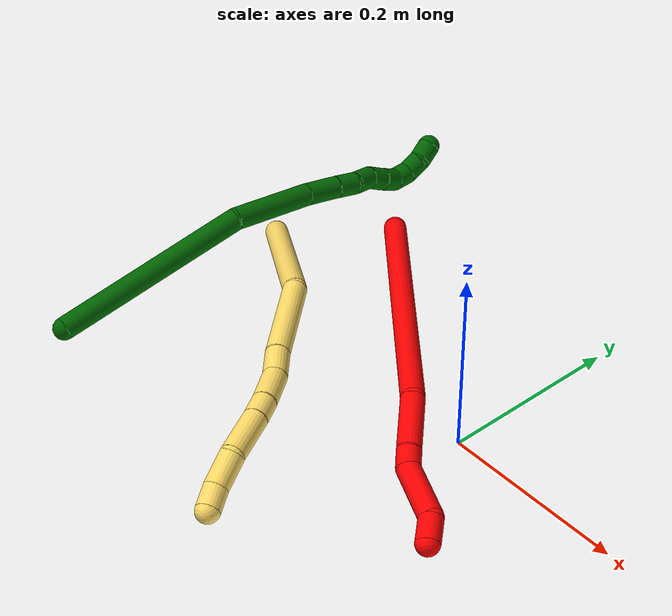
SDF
<sdf version="1.7">
 <world name="default">
  <model name="2">
   <static>0</static>
   <link name="2">
    <collision name="collision-cylinder-e_1_1_4">
     <pose>0.081137 -0.069996 -0.12552 2.6329 0.51395 1.58154</pose>
     <geometry><cylinder><radius>0.0125</radius><length>0.330078</length></cylinder></geometry>
     <surface>
      <friction><ode><mu>1.16</mu><mu2>1.16</mu2><slip1>0</slip1><slip2>0</slip2></ode></friction>
      <contact><ode><kp>1e+06</kp><kd>1</kd><max_vel>0</max_vel><min_depth>0.001</min_depth></ode></contact>
     </surface>
    </collision>
    <visual name="visual-cylinder-e_1_1_4">
     <pose>0.081137 -0.069996 -0.12552 2.6329 0.51395 1.58154</pose>
     <geometry><cylinder><radius>0.0125</radius><length>0.330078</length></cylinder></geometry>
     <material><ambient>1 0 0 1</ambient></material>
    </visual>
    <collision name="collision-cylinder-e_2_4_5">
     <pose>0.166741 -0.150161 -0.278185 2.78316 0.152918 0.800146</pose>
     <geometry><cylinder><radius>0.0125</radius><length>0.058659</length></cylinder></geometry>
     <surface>
      <friction><ode><mu>1.16</mu><mu2>1.16</mu2><slip1>0</slip1><slip2>0</slip2></ode></friction>
      <contact><ode><kp>1e+06</kp><kd>1</kd><max_vel>0</max_vel><min_depth>0.001</min_depth></ode></contact>
     </surface>
    </collision>
    <visual name="visual-cylinder-e_2_4_5">
     <pose>0.166741 -0.150161 -0.278185 2.78316 0.152918 0.800146</pose>
     <geometry><cylinder><radius>0.0125</radius><length>0.058659</length></cylinder></geometry>
     <material><ambient>1 0 0 1</ambient></material>
    </visual>
    <collision name="collision-cylinder-e_3_5_6">
     <pose>0.171756 -0.162935 -0.315049 2.87965 0.054406 0.407399</pose>
     <geometry><cylinder><radius>0.0125</radius><length>0.020155</length></cylinder></geometry>
     <surface>
      <friction><ode><mu>1.16</mu><mu2>1.16</mu2><slip1>0</slip1><slip2>0</slip2></ode></friction>
      <contact><ode><kp>1e+06</kp><kd>1</kd><max_vel>0</max_vel><min_depth>0.001</min_depth></ode></contact>
     </surface>
    </collision>
    <visual name="visual-cylinder-e_3_5_6">
     <pose>0.171756 -0.162935 -0.315049 2.87965 0.054406 0.407399</pose>
     <geometry><cylinder><radius>0.0125</radius><length>0.020155</length></cylinder></geometry>
     <material><ambient>1 0 0 1</ambient></material>
    </visual>
    <collision name="collision-cylinder-e_4_6_7">
     <pose>0.188183 -0.16862 -0.352307 3.03024 0.520354 2.72884</pose>
     <geometry><cylinder><radius>0.0125</radius><length>0.063874</length></cylinder></geometry>
     <surface>
      <friction><ode><mu>1.16</mu><mu2>1.16</mu2><slip1>0</slip1><slip2>0</slip2></ode></friction>
      <contact><ode><kp>1e+06</kp><kd>1</kd><max_vel>0</max_vel><min_depth>0.001</min_depth></ode></contact>
     </surface>
    </collision>
    <visual name="visual-cylinder-e_4_6_7">
     <pose>0.188183 -0.16862 -0.352307 3.03024 0.520354 2.72884</pose>
     <geometry><cylinder><radius>0.0125</radius><length>0.063874</length></cylinder></geometry>
     <material><ambient>1 0 0 1</ambient></material>
    </visual>
    <collision name="collision-cylinder-e_5_7_2">
     <pose>0.205117 -0.176683 -0.392474 2.76574 0.077582 0.402636</pose>
     <geometry><cylinder><radius>0.0125</radius><length>0.027235</length></cylinder></geometry>
     <surface>
      <friction><ode><mu>1.16</mu><mu2>1.16</mu2><slip1>0</slip1><slip2>0</slip2></ode></friction>
      <contact><ode><kp>1e+06</kp><kd>1</kd><max_vel>0</max_vel><min_depth>0.001</min_depth></ode></contact>
     </surface>
    </collision>
    <visual name="visual-cylinder-e_5_7_2">
     <pose>0.205117 -0.176683 -0.392474 2.76574 0.077582 0.402636</pose>
     <geometry><cylinder><radius>0.0125</radius><length>0.027235</length></cylinder></geometry>
     <material><ambient>1 0 0 1</ambient></material>
    </visual>
    <collision name="collision-sphere-2">
     <pose>0.206172 -0.181666 -0.405102 0 -0 0</pose>
     <geometry><sphere><radius>0.0125</radius></sphere></geometry>
     <surface>
      <friction><ode><mu>1.16</mu><mu2>1.16</mu2><slip1>0</slip1><slip2>0</slip2></ode></friction>
      <contact><ode><kp>1e+06</kp><kd>1</kd><max_vel>0</max_vel><min_depth>0.001</min_depth></ode></contact>
     </surface>
    </collision>
    <visual name="visual-sphere-2">
     <pose>0.206172 -0.181666 -0.405102 0 -0 0</pose>
     <geometry><sphere><radius>0.0125</radius></sphere></geometry>
     <material><ambient>1 0 0 1</ambient></material>
    </visual>
    <collision name="collision-sphere-7">
     <pose>0.204062 -0.171699 -0.379845 0 -0 0</pose>
     <geometry><sphere><radius>0.0125</radius></sphere></geometry>
     <surface>
      <friction><ode><mu>1.16</mu><mu2>1.16</mu2><slip1>0</slip1><slip2>0</slip2></ode></friction>
      <contact><ode><kp>1e+06</kp><kd>1</kd><max_vel>0</max_vel><min_depth>0.001</min_depth></ode></contact>
     </surface>
    </collision>
    <visual name="visual-sphere-7">
     <pose>0.204062 -0.171699 -0.379845 0 -0 0</pose>
     <geometry><sphere><radius>0.0125</radius></sphere></geometry>
     <material><ambient>1 0 0 1</ambient></material>
    </visual>
    <collision name="collision-sphere-6">
     <pose>0.172304 -0.165541 -0.324769 0 -0 0</pose>
     <geometry><sphere><radius>0.0125</radius></sphere></geometry>
     <surface>
      <friction><ode><mu>1.16</mu><mu2>1.16</mu2><slip1>0</slip1><slip2>0</slip2></ode></friction>
      <contact><ode><kp>1e+06</kp><kd>1</kd><max_vel>0</max_vel><min_depth>0.001</min_depth></ode></contact>
     </surface>
    </collision>
    <visual name="visual-sphere-6">
     <pose>0.172304 -0.165541 -0.324769 0 -0 0</pose>
     <geometry><sphere><radius>0.0125</radius></sphere></geometry>
     <material><ambient>1 0 0 1</ambient></material>
    </visual>
    <collision name="collision-sphere-5">
     <pose>0.171208 -0.160329 -0.30533 0 -0 0</pose>
     <geometry><sphere><radius>0.0125</radius></sphere></geometry>
     <surface>
      <friction><ode><mu>1.16</mu><mu2>1.16</mu2><slip1>0</slip1><slip2>0</slip2></ode></friction>
      <contact><ode><kp>1e+06</kp><kd>1</kd><max_vel>0</max_vel><min_depth>0.001</min_depth></ode></contact>
     </surface>
    </collision>
    <visual name="visual-sphere-5">
     <pose>0.171208 -0.160329 -0.30533 0 -0 0</pose>
     <geometry><sphere><radius>0.0125</radius></sphere></geometry>
     <material><ambient>1 0 0 1</ambient></material>
    </visual>
    <collision name="collision-sphere-1">
     <geometry><sphere><radius>0.0125</radius></sphere></geometry>
     <surface>
      <friction><ode><mu>1.16</mu><mu2>1.16</mu2><slip1>0</slip1><slip2>0</slip2></ode></friction>
      <contact><ode><kp>1e+06</kp><kd>1</kd><max_vel>0</max_vel><min_depth>0.001</min_depth></ode></contact>
     </surface>
    </collision>
    <visual name="visual-sphere-1">
     <geometry><sphere><radius>0.0125</radius></sphere></geometry>
     <material><ambient>1 0 0 1</ambient></material>
    </visual>
    <collision name="collision-sphere-4">
     <pose>0.162273 -0.139992 -0.25104 0 -0 0</pose>
     <geometry><sphere><radius>0.0125</radius></sphere></geometry>
     <surface>
      <friction><ode><mu>1.16</mu><mu2>1.16</mu2><slip1>0</slip1><slip2>0</slip2></ode></friction>
      <contact><ode><kp>1e+06</kp><kd>1</kd><max_vel>0</max_vel><min_depth>0.001</min_depth></ode></contact>
     </surface>
    </collision>
    <visual name="visual-sphere-4">
     <pose>0.162273 -0.139992 -0.25104 0 -0 0</pose>
     <geometry><sphere><radius>0.0125</radius></sphere></geometry>
     <material><ambient>1 0 0 1</ambient></material>
    </visual>
    <inertial>
     <pose>0.11526 -0.101557 -0.194582 0 -0 0</pose>
     <mass>0.5</mass>
     <inertia>
      <ixx>0.00263</ixx>
      <ixy>0</ixy>
      <ixz>0</ixz>
      <iyy>0.003386</iyy>
      <iyz>0</iyz>
      <izz>-0.00024</izz>
     </inertia>
    </inertial>
   </link>
   <pose>-0.293218 0.182097 0.011497 -0.648879 -0.801663 0.244757</pose>
  </model>
  <model name="5">
   <static>0</static>
   <link name="5">
    <collision name="collision-cylinder-e_1_1_4">
     <pose>-0.015464 -0.072071 -0.063712 2.29471 -0.159389 -0.350751</pose>
     <geometry><cylinder><radius>0.0125</radius><length>0.19486</length></cylinder></geometry>
     <surface>
      <friction><ode><mu>1.16</mu><mu2>1.16</mu2><slip1>0</slip1><slip2>0</slip2></ode></friction>
      <contact><ode><kp>1e+06</kp><kd>1</kd><max_vel>0</max_vel><min_depth>0.001</min_depth></ode></contact>
     </surface>
    </collision>
    <visual name="visual-cylinder-e_1_1_4">
     <pose>-0.015464 -0.072071 -0.063712 2.29471 -0.159389 -0.350751</pose>
     <geometry><cylinder><radius>0.0125</radius><length>0.19486</length></cylinder></geometry>
     <material><ambient>1 0.858824 0.4 1</ambient></material>
    </visual>
    <collision name="collision-cylinder-e_2_4_5">
     <pose>-0.023062 -0.169256 -0.170016 2.60884 0.157739 0.563858</pose>
     <geometry><cylinder><radius>0.0125</radius><length>0.100133</length></cylinder></geometry>
     <surface>
      <friction><ode><mu>1.16</mu><mu2>1.16</mu2><slip1>0</slip1><slip2>0</slip2></ode></friction>
      <contact><ode><kp>1e+06</kp><kd>1</kd><max_vel>0</max_vel><min_depth>0.001</min_depth></ode></contact>
     </surface>
    </collision>
    <visual name="visual-cylinder-e_2_4_5">
     <pose>-0.023062 -0.169256 -0.170016 2.60884 0.157739 0.563858</pose>
     <geometry><cylinder><radius>0.0125</radius><length>0.100133</length></cylinder></geometry>
     <material><ambient>1 0.858824 0.4 1</ambient></material>
    </visual>
    <collision name="collision-cylinder-e_3_5_6">
     <pose>-0.011438 -0.203057 -0.224909 2.52671 0.244691 0.738955</pose>
     <geometry><cylinder><radius>0.0125</radius><length>0.031042</length></cylinder></geometry>
     <surface>
      <friction><ode><mu>1.16</mu><mu2>1.16</mu2><slip1>0</slip1><slip2>0</slip2></ode></friction>
      <contact><ode><kp>1e+06</kp><kd>1</kd><max_vel>0</max_vel><min_depth>0.001</min_depth></ode></contact>
     </surface>
    </collision>
    <visual name="visual-cylinder-e_3_5_6">
     <pose>-0.011438 -0.203057 -0.224909 2.52671 0.244691 0.738955</pose>
     <geometry><cylinder><radius>0.0125</radius><length>0.031042</length></cylinder></geometry>
     <material><ambient>1 0.858824 0.4 1</ambient></material>
    </visual>
    <collision name="collision-cylinder-e_4_6_7">
     <pose>-0.005647 -0.220289 -0.254622 2.68534 0.104336 0.442448</pose>
     <geometry><cylinder><radius>0.0125</radius><length>0.039005</length></cylinder></geometry>
     <surface>
      <friction><ode><mu>1.16</mu><mu2>1.16</mu2><slip1>0</slip1><slip2>0</slip2></ode></friction>
      <contact><ode><kp>1e+06</kp><kd>1</kd><max_vel>0</max_vel><min_depth>0.001</min_depth></ode></contact>
     </surface>
    </collision>
    <visual name="visual-cylinder-e_4_6_7">
     <pose>-0.005647 -0.220289 -0.254622 2.68534 0.104336 0.442448</pose>
     <geometry><cylinder><radius>0.0125</radius><length>0.039005</length></cylinder></geometry>
     <material><ambient>1 0.858824 0.4 1</ambient></material>
    </visual>
    <collision name="collision-cylinder-e_5_7_8">
     <pose>-0.001912 -0.232947 -0.28323 2.78965 0.141857 0.760271</pose>
     <geometry><cylinder><radius>0.0125</radius><length>0.024096</length></cylinder></geometry>
     <surface>
      <friction><ode><mu>1.16</mu><mu2>1.16</mu2><slip1>0</slip1><slip2>0</slip2></ode></friction>
      <contact><ode><kp>1e+06</kp><kd>1</kd><max_vel>0</max_vel><min_depth>0.001</min_depth></ode></contact>
     </surface>
    </collision>
    <visual name="visual-cylinder-e_5_7_8">
     <pose>-0.001912 -0.232947 -0.28323 2.78965 0.141857 0.760271</pose>
     <geometry><cylinder><radius>0.0125</radius><length>0.024096</length></cylinder></geometry>
     <material><ambient>1 0.858824 0.4 1</ambient></material>
    </visual>
    <collision name="collision-cylinder-e_6_8_9">
     <pose>0.00394 -0.243936 -0.318461 2.86289 0.164449 1.06244</pose>
     <geometry><cylinder><radius>0.0125</radius><length>0.050682</length></cylinder></geometry>
     <surface>
      <friction><ode><mu>1.16</mu><mu2>1.16</mu2><slip1>0</slip1><slip2>0</slip2></ode></friction>
      <contact><ode><kp>1e+06</kp><kd>1</kd><max_vel>0</max_vel><min_depth>0.001</min_depth></ode></contact>
     </surface>
    </collision>
    <visual name="visual-cylinder-e_6_8_9">
     <pose>0.00394 -0.243936 -0.318461 2.86289 0.164449 1.06244</pose>
     <geometry><cylinder><radius>0.0125</radius><length>0.050682</length></cylinder></geometry>
     <material><ambient>1 0.858824 0.4 1</ambient></material>
    </visual>
    <collision name="collision-cylinder-e_7_9_10">
     <pose>0.017178 -0.252826 -0.357633 3.00936 0.536894 2.66919</pose>
     <geometry><cylinder><radius>0.0125</radius><length>0.035543</length></cylinder></geometry>
     <surface>
      <friction><ode><mu>1.16</mu><mu2>1.16</mu2><slip1>0</slip1><slip2>0</slip2></ode></friction>
      <contact><ode><kp>1e+06</kp><kd>1</kd><max_vel>0</max_vel><min_depth>0.001</min_depth></ode></contact>
     </surface>
    </collision>
    <visual name="visual-cylinder-e_7_9_10">
     <pose>0.017178 -0.252826 -0.357633 3.00936 0.536894 2.66919</pose>
     <geometry><cylinder><radius>0.0125</radius><length>0.035543</length></cylinder></geometry>
     <material><ambient>1 0.858824 0.4 1</ambient></material>
    </visual>
    <collision name="collision-cylinder-e_8_10_2">
     <pose>0.031032 -0.258899 -0.383382 2.77627 0.397078 1.65609</pose>
     <geometry><cylinder><radius>0.0125</radius><length>0.024639</length></cylinder></geometry>
     <surface>
      <friction><ode><mu>1.16</mu><mu2>1.16</mu2><slip1>0</slip1><slip2>0</slip2></ode></friction>
      <contact><ode><kp>1e+06</kp><kd>1</kd><max_vel>0</max_vel><min_depth>0.001</min_depth></ode></contact>
     </surface>
    </collision>
    <visual name="visual-cylinder-e_8_10_2">
     <pose>0.031032 -0.258899 -0.383382 2.77627 0.397078 1.65609</pose>
     <geometry><cylinder><radius>0.0125</radius><length>0.024639</length></cylinder></geometry>
     <material><ambient>1 0.858824 0.4 1</ambient></material>
    </visual>
    <collision name="collision-sphere-2">
     <pose>0.035796 -0.262957 -0.393993 0 -0 0</pose>
     <geometry><sphere><radius>0.0125</radius></sphere></geometry>
     <surface>
      <friction><ode><mu>1.16</mu><mu2>1.16</mu2><slip1>0</slip1><slip2>0</slip2></ode></friction>
      <contact><ode><kp>1e+06</kp><kd>1</kd><max_vel>0</max_vel><min_depth>0.001</min_depth></ode></contact>
     </surface>
    </collision>
    <visual name="visual-sphere-2">
     <pose>0.035796 -0.262957 -0.393993 0 -0 0</pose>
     <geometry><sphere><radius>0.0125</radius></sphere></geometry>
     <material><ambient>1 0.858824 0.4 1</ambient></material>
    </visual>
    <collision name="collision-sphere-10">
     <pose>0.026267 -0.25484 -0.37277 0 -0 0</pose>
     <geometry><sphere><radius>0.0125</radius></sphere></geometry>
     <surface>
      <friction><ode><mu>1.16</mu><mu2>1.16</mu2><slip1>0</slip1><slip2>0</slip2></ode></friction>
      <contact><ode><kp>1e+06</kp><kd>1</kd><max_vel>0</max_vel><min_depth>0.001</min_depth></ode></contact>
     </surface>
    </collision>
    <visual name="visual-sphere-10">
     <pose>0.026267 -0.25484 -0.37277 0 -0 0</pose>
     <geometry><sphere><radius>0.0125</radius></sphere></geometry>
     <material><ambient>1 0.858824 0.4 1</ambient></material>
    </visual>
    <collision name="collision-sphere-9">
     <pose>0.008088 -0.250813 -0.342495 0 -0 0</pose>
     <geometry><sphere><radius>0.0125</radius></sphere></geometry>
     <surface>
      <friction><ode><mu>1.16</mu><mu2>1.16</mu2><slip1>0</slip1><slip2>0</slip2></ode></friction>
      <contact><ode><kp>1e+06</kp><kd>1</kd><max_vel>0</max_vel><min_depth>0.001</min_depth></ode></contact>
     </surface>
    </collision>
    <visual name="visual-sphere-9">
     <pose>0.008088 -0.250813 -0.342495 0 -0 0</pose>
     <geometry><sphere><radius>0.0125</radius></sphere></geometry>
     <material><ambient>1 0.858824 0.4 1</ambient></material>
    </visual>
    <collision name="collision-sphere-4">
     <pose>-0.030927 -0.144143 -0.127424 0 -0 0</pose>
     <geometry><sphere><radius>0.0125</radius></sphere></geometry>
     <surface>
      <friction><ode><mu>1.16</mu><mu2>1.16</mu2><slip1>0</slip1><slip2>0</slip2></ode></friction>
      <contact><ode><kp>1e+06</kp><kd>1</kd><max_vel>0</max_vel><min_depth>0.001</min_depth></ode></contact>
     </surface>
    </collision>
    <visual name="visual-sphere-4">
     <pose>-0.030927 -0.144143 -0.127424 0 -0 0</pose>
     <geometry><sphere><radius>0.0125</radius></sphere></geometry>
     <material><ambient>1 0.858824 0.4 1</ambient></material>
    </visual>
    <collision name="collision-sphere-1">
     <geometry><sphere><radius>0.0125</radius></sphere></geometry>
     <surface>
      <friction><ode><mu>1.16</mu><mu2>1.16</mu2><slip1>0</slip1><slip2>0</slip2></ode></friction>
      <contact><ode><kp>1e+06</kp><kd>1</kd><max_vel>0</max_vel><min_depth>0.001</min_depth></ode></contact>
     </surface>
    </collision>
    <visual name="visual-sphere-1">
     <geometry><sphere><radius>0.0125</radius></sphere></geometry>
     <material><ambient>1 0.858824 0.4 1</ambient></material>
    </visual>
    <collision name="collision-sphere-8">
     <pose>-0.000209 -0.237058 -0.294426 0 -0 0</pose>
     <geometry><sphere><radius>0.0125</radius></sphere></geometry>
     <surface>
      <friction><ode><mu>1.16</mu><mu2>1.16</mu2><slip1>0</slip1><slip2>0</slip2></ode></friction>
      <contact><ode><kp>1e+06</kp><kd>1</kd><max_vel>0</max_vel><min_depth>0.001</min_depth></ode></contact>
     </surface>
    </collision>
    <visual name="visual-sphere-8">
     <pose>-0.000209 -0.237058 -0.294426 0 -0 0</pose>
     <geometry><sphere><radius>0.0125</radius></sphere></geometry>
     <material><ambient>1 0.858824 0.4 1</ambient></material>
    </visual>
    <collision name="collision-sphere-5">
     <pose>-0.015198 -0.19437 -0.212608 0 -0 0</pose>
     <geometry><sphere><radius>0.0125</radius></sphere></geometry>
     <surface>
      <friction><ode><mu>1.16</mu><mu2>1.16</mu2><slip1>0</slip1><slip2>0</slip2></ode></friction>
      <contact><ode><kp>1e+06</kp><kd>1</kd><max_vel>0</max_vel><min_depth>0.001</min_depth></ode></contact>
     </surface>
    </collision>
    <visual name="visual-sphere-5">
     <pose>-0.015198 -0.19437 -0.212608 0 -0 0</pose>
     <geometry><sphere><radius>0.0125</radius></sphere></geometry>
     <material><ambient>1 0.858824 0.4 1</ambient></material>
    </visual>
    <collision name="collision-sphere-6">
     <pose>-0.007678 -0.211743 -0.237209 0 -0 0</pose>
     <geometry><sphere><radius>0.0125</radius></sphere></geometry>
     <surface>
      <friction><ode><mu>1.16</mu><mu2>1.16</mu2><slip1>0</slip1><slip2>0</slip2></ode></friction>
      <contact><ode><kp>1e+06</kp><kd>1</kd><max_vel>0</max_vel><min_depth>0.001</min_depth></ode></contact>
     </surface>
    </collision>
    <visual name="visual-sphere-6">
     <pose>-0.007678 -0.211743 -0.237209 0 -0 0</pose>
     <geometry><sphere><radius>0.0125</radius></sphere></geometry>
     <material><ambient>1 0.858824 0.4 1</ambient></material>
    </visual>
    <collision name="collision-sphere-7">
     <pose>-0.003615 -0.228835 -0.272034 0 -0 0</pose>
     <geometry><sphere><radius>0.0125</radius></sphere></geometry>
     <surface>
      <friction><ode><mu>1.16</mu><mu2>1.16</mu2><slip1>0</slip1><slip2>0</slip2></ode></friction>
      <contact><ode><kp>1e+06</kp><kd>1</kd><max_vel>0</max_vel><min_depth>0.001</min_depth></ode></contact>
     </surface>
    </collision>
    <visual name="visual-sphere-7">
     <pose>-0.003615 -0.228835 -0.272034 0 -0 0</pose>
     <geometry><sphere><radius>0.0125</radius></sphere></geometry>
     <material><ambient>1 0.858824 0.4 1</ambient></material>
    </visual>
    <inertial>
     <pose>-0.008738 -0.158458 -0.182949 0 -0 0</pose>
     <mass>0.5</mass>
     <inertia>
      <ixx>0.000523</ixx>
      <ixy>0</ixy>
      <ixz>0</ixz>
      <iyy>-0.000596</iyy>
      <iyz>0</iyz>
      <izz>0.000563</izz>
     </inertia>
    </inertial>
   </link>
   <pose>-0.374475 0.077563 0.011533 -1.87842 1.38951 -0.146787</pose>
  </model>
  <model name="6">
   <static>0</static>
   <link name="6">
    <collision name="collision-cylinder-e_1_1_4">
     <pose>0.022698 0.082569 -0.068952 -2.26657 0.207952 -0.439006</pose>
     <geometry><cylinder><radius>0.0125</radius><length>0.219884</length></cylinder></geometry>
     <surface>
      <friction><ode><mu>1.16</mu><mu2>1.16</mu2><slip1>0</slip1><slip2>0</slip2></ode></friction>
      <contact><ode><kp>1e+06</kp><kd>1</kd><max_vel>0</max_vel><min_depth>0.001</min_depth></ode></contact>
     </surface>
    </collision>
    <visual name="visual-cylinder-e_1_1_4">
     <pose>0.022698 0.082569 -0.068952 -2.26657 0.207952 -0.439006</pose>
     <geometry><cylinder><radius>0.0125</radius><length>0.219884</length></cylinder></geometry>
     <material><ambient>0 0.392157 0.003922 1</ambient></material>
    </visual>
    <collision name="collision-cylinder-e_2_4_5">
     <pose>0.06696 0.192907 -0.167735 -2.39195 0.486649 -1.12579</pose>
     <geometry><cylinder><radius>0.0125</radius><length>0.092216</length></cylinder></geometry>
     <surface>
      <friction><ode><mu>1.16</mu><mu2>1.16</mu2><slip1>0</slip1><slip2>0</slip2></ode></friction>
      <contact><ode><kp>1e+06</kp><kd>1</kd><max_vel>0</max_vel><min_depth>0.001</min_depth></ode></contact>
     </surface>
    </collision>
    <visual name="visual-cylinder-e_2_4_5">
     <pose>0.06696 0.192907 -0.167735 -2.39195 0.486649 -1.12579</pose>
     <geometry><cylinder><radius>0.0125</radius><length>0.092216</length></cylinder></geometry>
     <material><ambient>0 0.392157 0.003922 1</ambient></material>
    </visual>
    <collision name="collision-cylinder-e_3_5_6">
     <pose>0.098489 0.232313 -0.208735 -2.33577 0.553483 -1.17561</pose>
     <geometry><cylinder><radius>0.0125</radius><length>0.03792</length></cylinder></geometry>
     <surface>
      <friction><ode><mu>1.16</mu><mu2>1.16</mu2><slip1>0</slip1><slip2>0</slip2></ode></friction>
      <contact><ode><kp>1e+06</kp><kd>1</kd><max_vel>0</max_vel><min_depth>0.001</min_depth></ode></contact>
     </surface>
    </collision>
    <visual name="visual-cylinder-e_3_5_6">
     <pose>0.098489 0.232313 -0.208735 -2.33577 0.553483 -1.17561</pose>
     <geometry><cylinder><radius>0.0125</radius><length>0.03792</length></cylinder></geometry>
     <material><ambient>0 0.392157 0.003922 1</ambient></material>
    </visual>
    <collision name="collision-cylinder-e_4_6_7">
     <pose>0.11526 0.250924 -0.227161 -2.37591 0.594417 -1.30044</pose>
     <geometry><cylinder><radius>0.0125</radius><length>0.0243</length></cylinder></geometry>
     <surface>
      <friction><ode><mu>1.16</mu><mu2>1.16</mu2><slip1>0</slip1><slip2>0</slip2></ode></friction>
      <contact><ode><kp>1e+06</kp><kd>1</kd><max_vel>0</max_vel><min_depth>0.001</min_depth></ode></contact>
     </surface>
    </collision>
    <visual name="visual-cylinder-e_4_6_7">
     <pose>0.11526 0.250924 -0.227161 -2.37591 0.594417 -1.30044</pose>
     <geometry><cylinder><radius>0.0125</radius><length>0.0243</length></cylinder></geometry>
     <material><ambient>0 0.392157 0.003922 1</ambient></material>
    </visual>
    <collision name="collision-cylinder-e_5_7_8">
     <pose>0.12834 0.262127 -0.244678 -2.75084 0.514699 -1.8521</pose>
     <geometry><cylinder><radius>0.0125</radius><length>0.025496</length></cylinder></geometry>
     <surface>
      <friction><ode><mu>1.16</mu><mu2>1.16</mu2><slip1>0</slip1><slip2>0</slip2></ode></friction>
      <contact><ode><kp>1e+06</kp><kd>1</kd><max_vel>0</max_vel><min_depth>0.001</min_depth></ode></contact>
     </surface>
    </collision>
    <visual name="visual-cylinder-e_5_7_8">
     <pose>0.12834 0.262127 -0.244678 -2.75084 0.514699 -1.8521</pose>
     <geometry><cylinder><radius>0.0125</radius><length>0.025496</length></cylinder></geometry>
     <material><ambient>0 0.392157 0.003922 1</ambient></material>
    </visual>
    <collision name="collision-cylinder-e_6_8_9">
     <pose>0.14238 0.269847 -0.260355 -2.56872 0.877891 -2.02102</pose>
     <geometry><cylinder><radius>0.0125</radius><length>0.020184</length></cylinder></geometry>
     <surface>
      <friction><ode><mu>1.16</mu><mu2>1.16</mu2><slip1>0</slip1><slip2>0</slip2></ode></friction>
      <contact><ode><kp>1e+06</kp><kd>1</kd><max_vel>0</max_vel><min_depth>0.001</min_depth></ode></contact>
     </surface>
    </collision>
    <visual name="visual-cylinder-e_6_8_9">
     <pose>0.14238 0.269847 -0.260355 -2.56872 0.877891 -2.02102</pose>
     <geometry><cylinder><radius>0.0125</radius><length>0.020184</length></cylinder></geometry>
     <material><ambient>0 0.392157 0.003922 1</ambient></material>
    </visual>
    <collision name="collision-cylinder-e_7_9_10">
     <pose>0.157217 0.276472 -0.272111 -2.68284 0.785579 -2.11523</pose>
     <geometry><cylinder><radius>0.0125</radius><length>0.02</length></cylinder></geometry>
     <surface>
      <friction><ode><mu>1.16</mu><mu2>1.16</mu2><slip1>0</slip1><slip2>0</slip2></ode></friction>
      <contact><ode><kp>1e+06</kp><kd>1</kd><max_vel>0</max_vel><min_depth>0.001</min_depth></ode></contact>
     </surface>
    </collision>
    <visual name="visual-cylinder-e_7_9_10">
     <pose>0.157217 0.276472 -0.272111 -2.68284 0.785579 -2.11523</pose>
     <geometry><cylinder><radius>0.0125</radius><length>0.02</length></cylinder></geometry>
     <material><ambient>0 0.392157 0.003922 1</ambient></material>
    </visual>
    <collision name="collision-cylinder-e_8_10_11">
     <pose>0.167658 0.285698 -0.285626 -2.4375 0.34358 -0.882494</pose>
     <geometry><cylinder><radius>0.0125</radius><length>0.02</length></cylinder></geometry>
     <surface>
      <friction><ode><mu>1.16</mu><mu2>1.16</mu2><slip1>0</slip1><slip2>0</slip2></ode></friction>
      <contact><ode><kp>1e+06</kp><kd>1</kd><max_vel>0</max_vel><min_depth>0.001</min_depth></ode></contact>
     </surface>
    </collision>
    <visual name="visual-cylinder-e_8_10_11">
     <pose>0.167658 0.285698 -0.285626 -2.4375 0.34358 -0.882494</pose>
     <geometry><cylinder><radius>0.0125</radius><length>0.02</length></cylinder></geometry>
     <material><ambient>0 0.392157 0.003922 1</ambient></material>
    </visual>
    <collision name="collision-cylinder-e_9_11_12">
     <pose>0.170135 0.300158 -0.298209 -2.14456 -0.089266 0.163721</pose>
     <geometry><cylinder><radius>0.0125</radius><length>0.02</length></cylinder></geometry>
     <surface>
      <friction><ode><mu>1.16</mu><mu2>1.16</mu2><slip1>0</slip1><slip2>0</slip2></ode></friction>
      <contact><ode><kp>1e+06</kp><kd>1</kd><max_vel>0</max_vel><min_depth>0.001</min_depth></ode></contact>
     </surface>
    </collision>
    <visual name="visual-cylinder-e_9_11_12">
     <pose>0.170135 0.300158 -0.298209 -2.14456 -0.089266 0.163721</pose>
     <geometry><cylinder><radius>0.0125</radius><length>0.02</length></cylinder></geometry>
     <material><ambient>0 0.392157 0.003922 1</ambient></material>
    </visual>
    <collision name="collision-cylinder-e_10_12_2">
     <pose>0.167937 0.314613 -0.311439 -2.48018 -0.131027 0.377645</pose>
     <geometry><cylinder><radius>0.0125</radius><length>0.02</length></cylinder></geometry>
     <surface>
      <friction><ode><mu>1.16</mu><mu2>1.16</mu2><slip1>0</slip1><slip2>0</slip2></ode></friction>
      <contact><ode><kp>1e+06</kp><kd>1</kd><max_vel>0</max_vel><min_depth>0.001</min_depth></ode></contact>
     </surface>
    </collision>
    <visual name="visual-cylinder-e_10_12_2">
     <pose>0.167937 0.314613 -0.311439 -2.48018 -0.131027 0.377645</pose>
     <geometry><cylinder><radius>0.0125</radius><length>0.02</length></cylinder></geometry>
     <material><ambient>0 0.392157 0.003922 1</ambient></material>
    </visual>
    <collision name="collision-sphere-2">
     <pose>0.16663 0.320703 -0.319263 0 -0 0</pose>
     <geometry><sphere><radius>0.0125</radius></sphere></geometry>
     <surface>
      <friction><ode><mu>1.16</mu><mu2>1.16</mu2><slip1>0</slip1><slip2>0</slip2></ode></friction>
      <contact><ode><kp>1e+06</kp><kd>1</kd><max_vel>0</max_vel><min_depth>0.001</min_depth></ode></contact>
     </surface>
    </collision>
    <visual name="visual-sphere-2">
     <pose>0.16663 0.320703 -0.319263 0 -0 0</pose>
     <geometry><sphere><radius>0.0125</radius></sphere></geometry>
     <material><ambient>0 0.392157 0.003922 1</ambient></material>
    </visual>
    <collision name="collision-sphere-12">
     <pose>0.169243 0.308524 -0.303616 0 -0 0</pose>
     <geometry><sphere><radius>0.0125</radius></sphere></geometry>
     <surface>
      <friction><ode><mu>1.16</mu><mu2>1.16</mu2><slip1>0</slip1><slip2>0</slip2></ode></friction>
      <contact><ode><kp>1e+06</kp><kd>1</kd><max_vel>0</max_vel><min_depth>0.001</min_depth></ode></contact>
     </surface>
    </collision>
    <visual name="visual-sphere-12">
     <pose>0.169243 0.308524 -0.303616 0 -0 0</pose>
     <geometry><sphere><radius>0.0125</radius></sphere></geometry>
     <material><ambient>0 0.392157 0.003922 1</ambient></material>
    </visual>
    <collision name="collision-sphere-11">
     <pose>0.171026 0.291793 -0.292803 0 -0 0</pose>
     <geometry><sphere><radius>0.0125</radius></sphere></geometry>
     <surface>
      <friction><ode><mu>1.16</mu><mu2>1.16</mu2><slip1>0</slip1><slip2>0</slip2></ode></friction>
      <contact><ode><kp>1e+06</kp><kd>1</kd><max_vel>0</max_vel><min_depth>0.001</min_depth></ode></contact>
     </surface>
    </collision>
    <visual name="visual-sphere-11">
     <pose>0.171026 0.291793 -0.292803 0 -0 0</pose>
     <geometry><sphere><radius>0.0125</radius></sphere></geometry>
     <material><ambient>0 0.392157 0.003922 1</ambient></material>
    </visual>
    <collision name="collision-sphere-10">
     <pose>0.164289 0.279603 -0.27845 0 -0 0</pose>
     <geometry><sphere><radius>0.0125</radius></sphere></geometry>
     <surface>
      <friction><ode><mu>1.16</mu><mu2>1.16</mu2><slip1>0</slip1><slip2>0</slip2></ode></friction>
      <contact><ode><kp>1e+06</kp><kd>1</kd><max_vel>0</max_vel><min_depth>0.001</min_depth></ode></contact>
     </surface>
    </collision>
    <visual name="visual-sphere-10">
     <pose>0.164289 0.279603 -0.27845 0 -0 0</pose>
     <geometry><sphere><radius>0.0125</radius></sphere></geometry>
     <material><ambient>0 0.392157 0.003922 1</ambient></material>
    </visual>
    <collision name="collision-sphere-9">
     <pose>0.150144 0.273342 -0.265772 0 -0 0</pose>
     <geometry><sphere><radius>0.0125</radius></sphere></geometry>
     <surface>
      <friction><ode><mu>1.16</mu><mu2>1.16</mu2><slip1>0</slip1><slip2>0</slip2></ode></friction>
      <contact><ode><kp>1e+06</kp><kd>1</kd><max_vel>0</max_vel><min_depth>0.001</min_depth></ode></contact>
     </surface>
    </collision>
    <visual name="visual-sphere-9">
     <pose>0.150144 0.273342 -0.265772 0 -0 0</pose>
     <geometry><sphere><radius>0.0125</radius></sphere></geometry>
     <material><ambient>0 0.392157 0.003922 1</ambient></material>
    </visual>
    <collision name="collision-sphere-4">
     <pose>0.045397 0.165138 -0.137905 0 -0 0</pose>
     <geometry><sphere><radius>0.0125</radius></sphere></geometry>
     <surface>
      <friction><ode><mu>1.16</mu><mu2>1.16</mu2><slip1>0</slip1><slip2>0</slip2></ode></friction>
      <contact><ode><kp>1e+06</kp><kd>1</kd><max_vel>0</max_vel><min_depth>0.001</min_depth></ode></contact>
     </surface>
    </collision>
    <visual name="visual-sphere-4">
     <pose>0.045397 0.165138 -0.137905 0 -0 0</pose>
     <geometry><sphere><radius>0.0125</radius></sphere></geometry>
     <material><ambient>0 0.392157 0.003922 1</ambient></material>
    </visual>
    <collision name="collision-sphere-1">
     <geometry><sphere><radius>0.0125</radius></sphere></geometry>
     <surface>
      <friction><ode><mu>1.16</mu><mu2>1.16</mu2><slip1>0</slip1><slip2>0</slip2></ode></friction>
      <contact><ode><kp>1e+06</kp><kd>1</kd><max_vel>0</max_vel><min_depth>0.001</min_depth></ode></contact>
     </surface>
    </collision>
    <visual name="visual-sphere-1">
     <geometry><sphere><radius>0.0125</radius></sphere></geometry>
     <material><ambient>0 0.392157 0.003922 1</ambient></material>
    </visual>
    <collision name="collision-sphere-8">
     <pose>0.134615 0.266353 -0.254938 0 -0 0</pose>
     <geometry><sphere><radius>0.0125</radius></sphere></geometry>
     <surface>
      <friction><ode><mu>1.16</mu><mu2>1.16</mu2><slip1>0</slip1><slip2>0</slip2></ode></friction>
      <contact><ode><kp>1e+06</kp><kd>1</kd><max_vel>0</max_vel><min_depth>0.001</min_depth></ode></contact>
     </surface>
    </collision>
    <visual name="visual-sphere-8">
     <pose>0.134615 0.266353 -0.254938 0 -0 0</pose>
     <geometry><sphere><radius>0.0125</radius></sphere></geometry>
     <material><ambient>0 0.392157 0.003922 1</ambient></material>
    </visual>
    <collision name="collision-sphere-5">
     <pose>0.088523 0.220677 -0.197565 0 -0 0</pose>
     <geometry><sphere><radius>0.0125</radius></sphere></geometry>
     <surface>
      <friction><ode><mu>1.16</mu><mu2>1.16</mu2><slip1>0</slip1><slip2>0</slip2></ode></friction>
      <contact><ode><kp>1e+06</kp><kd>1</kd><max_vel>0</max_vel><min_depth>0.001</min_depth></ode></contact>
     </surface>
    </collision>
    <visual name="visual-sphere-5">
     <pose>0.088523 0.220677 -0.197565 0 -0 0</pose>
     <geometry><sphere><radius>0.0125</radius></sphere></geometry>
     <material><ambient>0 0.392157 0.003922 1</ambient></material>
    </visual>
    <collision name="collision-sphere-6">
     <pose>0.108456 0.243948 -0.219904 0 -0 0</pose>
     <geometry><sphere><radius>0.0125</radius></sphere></geometry>
     <surface>
      <friction><ode><mu>1.16</mu><mu2>1.16</mu2><slip1>0</slip1><slip2>0</slip2></ode></friction>
      <contact><ode><kp>1e+06</kp><kd>1</kd><max_vel>0</max_vel><min_depth>0.001</min_depth></ode></contact>
     </surface>
    </collision>
    <visual name="visual-sphere-6">
     <pose>0.108456 0.243948 -0.219904 0 -0 0</pose>
     <geometry><sphere><radius>0.0125</radius></sphere></geometry>
     <material><ambient>0 0.392157 0.003922 1</ambient></material>
    </visual>
    <collision name="collision-sphere-7">
     <pose>0.122064 0.2579 -0.234418 0 -0 0</pose>
     <geometry><sphere><radius>0.0125</radius></sphere></geometry>
     <surface>
      <friction><ode><mu>1.16</mu><mu2>1.16</mu2><slip1>0</slip1><slip2>0</slip2></ode></friction>
      <contact><ode><kp>1e+06</kp><kd>1</kd><max_vel>0</max_vel><min_depth>0.001</min_depth></ode></contact>
     </surface>
    </collision>
    <visual name="visual-sphere-7">
     <pose>0.122064 0.2579 -0.234418 0 -0 0</pose>
     <geometry><sphere><radius>0.0125</radius></sphere></geometry>
     <material><ambient>0 0.392157 0.003922 1</ambient></material>
    </visual>
    <inertial>
     <pose>0.074212 0.17304 -0.157811 0 -0 0</pose>
     <mass>0.5</mass>
     <inertia>
      <ixx>0.000399</ixx>
      <ixy>0</ixy>
      <ixz>0</ixz>
      <iyy>-0.000871</iyy>
      <iyz>0</iyz>
      <izz>-0.000973</izz>
     </inertia>
    </inertial>
   </link>
   <pose>-0.387631 -0.199115 0.012006 1.59992 0.993334 0.78058</pose>
  </model>
 </world>
</sdf>
